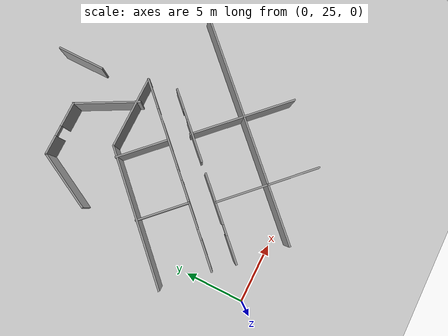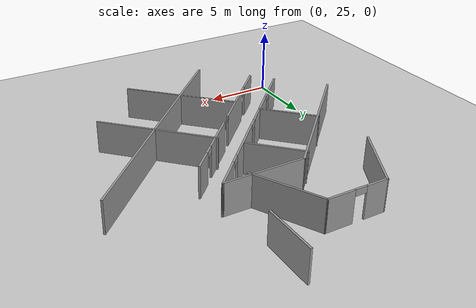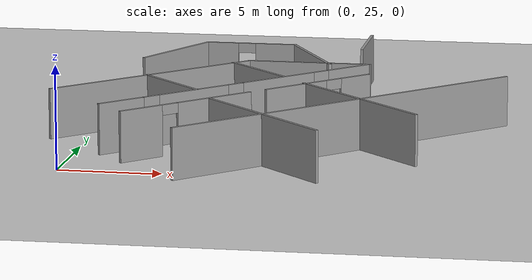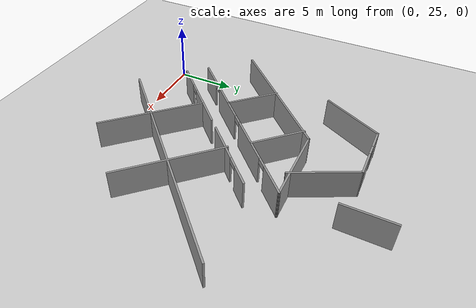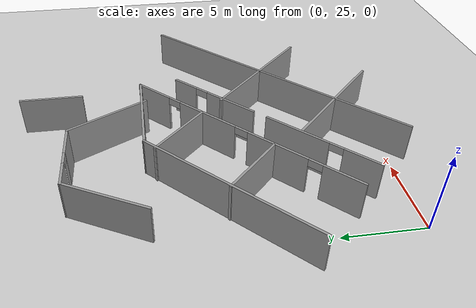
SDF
<sdf version="1.6">
 <world name="default">
  <model name="ground_plane">
   <static>1</static>
   <link name="link">
    <collision name="collision">
     <geometry><plane><normal>0 0 1</normal><size>100 100</size></plane></geometry>
     <surface>
      <contact><collide_bitmask>65535</collide_bitmask></contact>
      <friction><ode><mu>100</mu><mu2>50</mu2></ode></friction>
     </surface>
    </collision>
    <visual name="visual">
     <cast_shadows>0</cast_shadows>
     <geometry><plane><normal>0 0 1</normal><size>100 100</size></plane></geometry>
     <material>
      <script><uri>file://media/materials/scripts/gazebo.material</uri><name>Gazebo/Grey</name></script>
     </material>
    </visual>
   </link>
  </model>
  <model name="Level_1_with_doors">
   <link name="Wall_13">
    <pose>-2.41325 19.5239 0 0 -0 1.08416</pose>
    <visual name="Wall_13_Visual">
     <pose>0 0 1.25 0 -0 0</pose>
     <geometry><box><size>5.33905 0.15 2.5</size></box></geometry>
     <material>
      <script><uri>file://media/materials/scripts/gazebo.material</uri><name>Gazebo/Grey</name></script>
      <ambient>1 1 1 1</ambient>
      <shader type="pixel"/>
     </material>
     <meta><layer>0</layer></meta>
    </visual>
    <collision name="Wall_13_Collision">
     <pose>0 0 1.25 0 -0 0</pose>
     <geometry><box><size>5.33905 0.15 2.5</size></box></geometry>
     <surface>
      <friction>
       <ode><mu>1</mu><mu2>1</mu2><fdir1>0 0 0</fdir1><slip1>0</slip1><slip2>0</slip2></ode>
       <torsional>
        <coefficient>1</coefficient>
        <patch_radius>0</patch_radius>
        <surface_radius>0</surface_radius>
        <use_patch_radius>1</use_patch_radius>
        <ode><slip>0</slip></ode>
       </torsional>
      </friction>
      <bounce><restitution_coefficient>0</restitution_coefficient><threshold>1e+06</threshold></bounce>
      <contact>
       <collide_without_contact>0</collide_without_contact>
       <collide_without_contact_bitmask>1</collide_without_contact_bitmask>
       <collide_bitmask>1</collide_bitmask>
       <ode>
        <soft_cfm>0</soft_cfm>
        <soft_erp>0.2</soft_erp>
        <kp>1e+13</kp>
        <kd>1</kd>
        <max_vel>0.01</max_vel>
        <min_depth>0</min_depth>
       </ode>
       <bullet>
        <split_impulse>1</split_impulse>
        <split_impulse_penetration_threshold>-0.01</split_impulse_penetration_threshold>
        <soft_cfm>0</soft_cfm>
        <soft_erp>0.2</soft_erp>
        <kp>1e+13</kp>
        <kd>1</kd>
       </bullet>
      </contact>
     </surface>
    </collision>
   </link>
   <link name="Wall_14">
    <pose>1.10008 21.8173 0 0 -0 0</pose>
    <visual name="Wall_14_Visual_1">
     <pose>1.3025 0 1.25 0 -0 0</pose>
     <geometry><box><size>2.145 0.15 2.5</size></box></geometry>
     <material>
      <script><uri>file://media/materials/scripts/gazebo.material</uri><name>Gazebo/Grey</name></script>
      <ambient>1 1 1 1</ambient>
      <shader type="pixel"/>
     </material>
     <meta><layer>0</layer></meta>
    </visual>
    <visual name="Wall_14_Visual_2">
     <pose>-0.22 0 2.25 0 -0 0</pose>
     <geometry><box><size>0.9 0.15 0.5</size></box></geometry>
     <material>
      <script><uri>file://media/materials/scripts/gazebo.material</uri><name>Gazebo/Grey</name></script>
      <ambient>1 1 1 1</ambient>
      <shader type="pixel"/>
     </material>
     <meta><layer>0</layer></meta>
    </visual>
    <visual name="Wall_14_Visual_0">
     <pose>-1.5225 0 1.25 0 -0 0</pose>
     <geometry><box><size>1.705 0.15 2.5</size></box></geometry>
     <material>
      <script><uri>file://media/materials/scripts/gazebo.material</uri><name>Gazebo/Grey</name></script>
      <ambient>1 1 1 1</ambient>
      <shader type="pixel"/>
     </material>
     <meta><layer>0</layer></meta>
    </visual>
    <collision name="Wall_14_Collision_0">
     <pose>-1.5225 0 1.25 0 -0 0</pose>
     <geometry><box><size>1.705 0.15 2.5</size></box></geometry>
     <surface>
      <friction>
       <ode><mu>1</mu><mu2>1</mu2><fdir1>0 0 0</fdir1><slip1>0</slip1><slip2>0</slip2></ode>
       <torsional>
        <coefficient>1</coefficient>
        <patch_radius>0</patch_radius>
        <surface_radius>0</surface_radius>
        <use_patch_radius>1</use_patch_radius>
        <ode><slip>0</slip></ode>
       </torsional>
      </friction>
      <bounce><restitution_coefficient>0</restitution_coefficient><threshold>1e+06</threshold></bounce>
      <contact>
       <collide_without_contact>0</collide_without_contact>
       <collide_without_contact_bitmask>1</collide_without_contact_bitmask>
       <collide_bitmask>1</collide_bitmask>
       <ode>
        <soft_cfm>0</soft_cfm>
        <soft_erp>0.2</soft_erp>
        <kp>1e+13</kp>
        <kd>1</kd>
        <max_vel>0.01</max_vel>
        <min_depth>0</min_depth>
       </ode>
       <bullet>
        <split_impulse>1</split_impulse>
        <split_impulse_penetration_threshold>-0.01</split_impulse_penetration_threshold>
        <soft_cfm>0</soft_cfm>
        <soft_erp>0.2</soft_erp>
        <kp>1e+13</kp>
        <kd>1</kd>
       </bullet>
      </contact>
     </surface>
    </collision>
    <collision name="Wall_14_Collision_1">
     <pose>1.3025 0 1.25 0 -0 0</pose>
     <geometry><box><size>2.145 0.15 2.5</size></box></geometry>
     <surface>
      <friction>
       <ode><mu>1</mu><mu2>1</mu2><fdir1>0 0 0</fdir1><slip1>0</slip1><slip2>0</slip2></ode>
       <torsional>
        <coefficient>1</coefficient>
        <patch_radius>0</patch_radius>
        <surface_radius>0</surface_radius>
        <use_patch_radius>1</use_patch_radius>
        <ode><slip>0</slip></ode>
       </torsional>
      </friction>
      <bounce><restitution_coefficient>0</restitution_coefficient><threshold>1e+06</threshold></bounce>
      <contact>
       <collide_without_contact>0</collide_without_contact>
       <collide_without_contact_bitmask>1</collide_without_contact_bitmask>
       <collide_bitmask>1</collide_bitmask>
       <ode>
        <soft_cfm>0</soft_cfm>
        <soft_erp>0.2</soft_erp>
        <kp>1e+13</kp>
        <kd>1</kd>
        <max_vel>0.01</max_vel>
        <min_depth>0</min_depth>
       </ode>
       <bullet>
        <split_impulse>1</split_impulse>
        <split_impulse_penetration_threshold>-0.01</split_impulse_penetration_threshold>
        <soft_cfm>0</soft_cfm>
        <soft_erp>0.2</soft_erp>
        <kp>1e+13</kp>
        <kd>1</kd>
       </bullet>
      </contact>
     </surface>
    </collision>
    <collision name="Wall_14_Collision_2">
     <pose>-0.22 0 2.25 0 -0 0</pose>
     <geometry><box><size>0.9 0.15 0.5</size></box></geometry>
     <surface>
      <friction>
       <ode><mu>1</mu><mu2>1</mu2><fdir1>0 0 0</fdir1><slip1>0</slip1><slip2>0</slip2></ode>
       <torsional>
        <coefficient>1</coefficient>
        <patch_radius>0</patch_radius>
        <surface_radius>0</surface_radius>
        <use_patch_radius>1</use_patch_radius>
        <ode><slip>0</slip></ode>
       </torsional>
      </friction>
      <bounce><restitution_coefficient>0</restitution_coefficient><threshold>1e+06</threshold></bounce>
      <contact>
       <collide_without_contact>0</collide_without_contact>
       <collide_without_contact_bitmask>1</collide_without_contact_bitmask>
       <collide_bitmask>1</collide_bitmask>
       <ode>
        <soft_cfm>0</soft_cfm>
        <soft_erp>0.2</soft_erp>
        <kp>1e+13</kp>
        <kd>1</kd>
        <max_vel>0.01</max_vel>
        <min_depth>0</min_depth>
       </ode>
       <bullet>
        <split_impulse>1</split_impulse>
        <split_impulse_penetration_threshold>-0.01</split_impulse_penetration_threshold>
        <soft_cfm>0</soft_cfm>
        <soft_erp>0.2</soft_erp>
        <kp>1e+13</kp>
        <kd>1</kd>
       </bullet>
      </contact>
     </surface>
    </collision>
   </link>
   <link name="Wall_15">
    <pose>4.66008 19.4439 0 0 0 -1.08274</pose>
    <visual name="Wall_15_Visual">
     <pose>0 0 1.25 0 -0 0</pose>
     <geometry><box><size>5.52413 0.15 2.5</size></box></geometry>
     <material>
      <script><uri>file://media/materials/scripts/gazebo.material</uri><name>Gazebo/Grey</name></script>
      <ambient>1 1 1 1</ambient>
      <shader type="pixel"/>
     </material>
     <meta><layer>0</layer></meta>
    </visual>
    <collision name="Wall_15_Collision">
     <pose>0 0 1.25 0 -0 0</pose>
     <geometry><box><size>5.52413 0.15 2.5</size></box></geometry>
     <surface>
      <friction>
       <ode><mu>1</mu><mu2>1</mu2><fdir1>0 0 0</fdir1><slip1>0</slip1><slip2>0</slip2></ode>
       <torsional>
        <coefficient>1</coefficient>
        <patch_radius>0</patch_radius>
        <surface_radius>0</surface_radius>
        <use_patch_radius>1</use_patch_radius>
        <ode><slip>0</slip></ode>
       </torsional>
      </friction>
      <bounce><restitution_coefficient>0</restitution_coefficient><threshold>1e+06</threshold></bounce>
      <contact>
       <collide_without_contact>0</collide_without_contact>
       <collide_without_contact_bitmask>1</collide_without_contact_bitmask>
       <collide_bitmask>1</collide_bitmask>
       <ode>
        <soft_cfm>0</soft_cfm>
        <soft_erp>0.2</soft_erp>
        <kp>1e+13</kp>
        <kd>1</kd>
        <max_vel>0.01</max_vel>
        <min_depth>0</min_depth>
       </ode>
       <bullet>
        <split_impulse>1</split_impulse>
        <split_impulse_penetration_threshold>-0.01</split_impulse_penetration_threshold>
        <soft_cfm>0</soft_cfm>
        <soft_erp>0.2</soft_erp>
        <kp>1e+13</kp>
        <kd>1</kd>
       </bullet>
      </contact>
     </surface>
    </collision>
   </link>
   <link name="Wall_17">
    <pose>7.00623 23.0867 0 0 0 -1.5708</pose>
    <visual name="Wall_17_Visual">
     <pose>0 0 1.25 0 -0 0</pose>
     <geometry><box><size>4 0.15 2.5</size></box></geometry>
     <material>
      <script><uri>file://media/materials/scripts/gazebo.material</uri><name>Gazebo/Grey</name></script>
      <ambient>1 1 1 1</ambient>
      <shader type="pixel"/>
     </material>
     <meta><layer>0</layer></meta>
    </visual>
    <collision name="Wall_17_Collision">
     <pose>0 0 1.25 0 -0 0</pose>
     <geometry><box><size>4 0.15 2.5</size></box></geometry>
     <surface>
      <friction>
       <ode><mu>1</mu><mu2>1</mu2><fdir1>0 0 0</fdir1><slip1>0</slip1><slip2>0</slip2></ode>
       <torsional>
        <coefficient>1</coefficient>
        <patch_radius>0</patch_radius>
        <surface_radius>0</surface_radius>
        <use_patch_radius>1</use_patch_radius>
        <ode><slip>0</slip></ode>
       </torsional>
      </friction>
      <bounce><restitution_coefficient>0</restitution_coefficient><threshold>1e+06</threshold></bounce>
      <contact>
       <collide_without_contact>0</collide_without_contact>
       <collide_without_contact_bitmask>1</collide_without_contact_bitmask>
       <collide_bitmask>1</collide_bitmask>
       <ode>
        <soft_cfm>0</soft_cfm>
        <soft_erp>0.2</soft_erp>
        <kp>1e+13</kp>
        <kd>1</kd>
        <max_vel>0.01</max_vel>
        <min_depth>0</min_depth>
       </ode>
       <bullet>
        <split_impulse>1</split_impulse>
        <split_impulse_penetration_threshold>-0.01</split_impulse_penetration_threshold>
        <soft_cfm>0</soft_cfm>
        <soft_erp>0.2</soft_erp>
        <kp>1e+13</kp>
        <kd>1</kd>
       </bullet>
      </contact>
     </surface>
    </collision>
   </link>
   <link name="Wall_27">
    <pose>3.01857 9.64481 0 0 -0 0.788384</pose>
    <visual name="Wall_27_Visual_5">
     <pose>0.162009 0 2.25 0 -0 0</pose>
     <geometry><box><size>0 0.15 0.5</size></box></geometry>
     <material>
      <script><uri>file://media/materials/scripts/gazebo.material</uri><name>Gazebo/Grey</name></script>
      <ambient>1 1 1 1</ambient>
      <shader type="pixel"/>
     </material>
     <meta><layer>0</layer></meta>
    </visual>
    <visual name="Wall_27_Visual_4">
     <pose>-4.57133 0 2.25 0 -0 0</pose>
     <geometry><box><size>0.9 0.15 0.5</size></box></geometry>
     <material>
      <script><uri>file://media/materials/scripts/gazebo.material</uri><name>Gazebo/Grey</name></script>
      <ambient>1 1 1 1</ambient>
      <shader type="pixel"/>
     </material>
     <meta><layer>0</layer></meta>
    </visual>
    <visual name="Wall_27_Visual_2">
     <pose>2.88774 0 1.25 0 -0 0</pose>
     <geometry><box><size>3.65146 0.15 2.5</size></box></geometry>
     <material>
      <script><uri>file://media/materials/scripts/gazebo.material</uri><name>Gazebo/Grey</name></script>
      <ambient>1 1 1 1</ambient>
      <shader type="pixel"/>
     </material>
     <meta><layer>0</layer></meta>
    </visual>
    <visual name="Wall_27_Visual_6">
     <pose>5.16347 0 2.25 0 -0 0</pose>
     <geometry><box><size>0.9 0.15 0.5</size></box></geometry>
     <material>
      <script><uri>file://media/materials/scripts/gazebo.material</uri><name>Gazebo/Grey</name></script>
      <ambient>1 1 1 1</ambient>
      <shader type="pixel"/>
     </material>
     <meta><layer>0</layer></meta>
    </visual>
    <visual name="Wall_27_Visual_1">
     <pose>-1.97966 0 1.25 0 -0 0</pose>
     <geometry><box><size>4.28334 0.15 2.5</size></box></geometry>
     <material>
      <script><uri>file://media/materials/scripts/gazebo.material</uri><name>Gazebo/Grey</name></script>
      <ambient>1 1 1 1</ambient>
      <shader type="pixel"/>
     </material>
     <meta><layer>0</layer></meta>
    </visual>
    <visual name="Wall_27_Visual_0">
     <pose>-6.20911 0 1.25 0 -0 0</pose>
     <geometry><box><size>2.37556 0.15 2.5</size></box></geometry>
     <material>
      <script><uri>file://media/materials/scripts/gazebo.material</uri><name>Gazebo/Grey</name></script>
      <ambient>1 1 1 1</ambient>
      <shader type="pixel"/>
     </material>
     <meta><layer>0</layer></meta>
    </visual>
    <visual name="Wall_27_Visual_3">
     <pose>6.50518 0 1.25 0 -0 0</pose>
     <geometry><box><size>1.78342 0.15 2.5</size></box></geometry>
     <material>
      <script><uri>file://media/materials/scripts/gazebo.material</uri><name>Gazebo/Grey</name></script>
      <ambient>1 1 1 1</ambient>
      <shader type="pixel"/>
     </material>
     <meta><layer>0</layer></meta>
    </visual>
    <collision name="Wall_27_Collision_5">
     <pose>0.162009 0 2.25 0 -0 0</pose>
     <geometry><box><size>0 0.15 0.5</size></box></geometry>
     <surface>
      <friction>
       <ode><mu>1</mu><mu2>1</mu2><fdir1>0 0 0</fdir1><slip1>0</slip1><slip2>0</slip2></ode>
       <torsional>
        <coefficient>1</coefficient>
        <patch_radius>0</patch_radius>
        <surface_radius>0</surface_radius>
        <use_patch_radius>1</use_patch_radius>
        <ode><slip>0</slip></ode>
       </torsional>
      </friction>
      <bounce><restitution_coefficient>0</restitution_coefficient><threshold>1e+06</threshold></bounce>
      <contact>
       <collide_without_contact>0</collide_without_contact>
       <collide_without_contact_bitmask>1</collide_without_contact_bitmask>
       <collide_bitmask>1</collide_bitmask>
       <ode>
        <soft_cfm>0</soft_cfm>
        <soft_erp>0.2</soft_erp>
        <kp>1e+13</kp>
        <kd>1</kd>
        <max_vel>0.01</max_vel>
        <min_depth>0</min_depth>
       </ode>
       <bullet>
        <split_impulse>1</split_impulse>
        <split_impulse_penetration_threshold>-0.01</split_impulse_penetration_threshold>
        <soft_cfm>0</soft_cfm>
        <soft_erp>0.2</soft_erp>
        <kp>1e+13</kp>
        <kd>1</kd>
       </bullet>
      </contact>
     </surface>
    </collision>
    <collision name="Wall_27_Collision_4">
     <pose>-4.57133 0 2.25 0 -0 0</pose>
     <geometry><box><size>0.9 0.15 0.5</size></box></geometry>
     <surface>
      <friction>
       <ode><mu>1</mu><mu2>1</mu2><fdir1>0 0 0</fdir1><slip1>0</slip1><slip2>0</slip2></ode>
       <torsional>
        <coefficient>1</coefficient>
        <patch_radius>0</patch_radius>
        <surface_radius>0</surface_radius>
        <use_patch_radius>1</use_patch_radius>
        <ode><slip>0</slip></ode>
       </torsional>
      </friction>
      <bounce><restitution_coefficient>0</restitution_coefficient><threshold>1e+06</threshold></bounce>
      <contact>
       <collide_without_contact>0</collide_without_contact>
       <collide_without_contact_bitmask>1</collide_without_contact_bitmask>
       <collide_bitmask>1</collide_bitmask>
       <ode>
        <soft_cfm>0</soft_cfm>
        <soft_erp>0.2</soft_erp>
        <kp>1e+13</kp>
        <kd>1</kd>
        <max_vel>0.01</max_vel>
        <min_depth>0</min_depth>
       </ode>
       <bullet>
        <split_impulse>1</split_impulse>
        <split_impulse_penetration_threshold>-0.01</split_impulse_penetration_threshold>
        <soft_cfm>0</soft_cfm>
        <soft_erp>0.2</soft_erp>
        <kp>1e+13</kp>
        <kd>1</kd>
       </bullet>
      </contact>
     </surface>
    </collision>
    <collision name="Wall_27_Collision_0">
     <pose>-6.20911 0 1.25 0 -0 0</pose>
     <geometry><box><size>2.37556 0.15 2.5</size></box></geometry>
     <surface>
      <friction>
       <ode><mu>1</mu><mu2>1</mu2><fdir1>0 0 0</fdir1><slip1>0</slip1><slip2>0</slip2></ode>
       <torsional>
        <coefficient>1</coefficient>
        <patch_radius>0</patch_radius>
        <surface_radius>0</surface_radius>
        <use_patch_radius>1</use_patch_radius>
        <ode><slip>0</slip></ode>
       </torsional>
      </friction>
      <bounce><restitution_coefficient>0</restitution_coefficient><threshold>1e+06</threshold></bounce>
      <contact>
       <collide_without_contact>0</collide_without_contact>
       <collide_without_contact_bitmask>1</collide_without_contact_bitmask>
       <collide_bitmask>1</collide_bitmask>
       <ode>
        <soft_cfm>0</soft_cfm>
        <soft_erp>0.2</soft_erp>
        <kp>1e+13</kp>
        <kd>1</kd>
        <max_vel>0.01</max_vel>
        <min_depth>0</min_depth>
       </ode>
       <bullet>
        <split_impulse>1</split_impulse>
        <split_impulse_penetration_threshold>-0.01</split_impulse_penetration_threshold>
        <soft_cfm>0</soft_cfm>
        <soft_erp>0.2</soft_erp>
        <kp>1e+13</kp>
        <kd>1</kd>
       </bullet>
      </contact>
     </surface>
    </collision>
    <collision name="Wall_27_Collision_1">
     <pose>-1.97966 0 1.25 0 -0 0</pose>
     <geometry><box><size>4.28334 0.15 2.5</size></box></geometry>
     <surface>
      <friction>
       <ode><mu>1</mu><mu2>1</mu2><fdir1>0 0 0</fdir1><slip1>0</slip1><slip2>0</slip2></ode>
       <torsional>
        <coefficient>1</coefficient>
        <patch_radius>0</patch_radius>
        <surface_radius>0</surface_radius>
        <use_patch_radius>1</use_patch_radius>
        <ode><slip>0</slip></ode>
       </torsional>
      </friction>
      <bounce><restitution_coefficient>0</restitution_coefficient><threshold>1e+06</threshold></bounce>
      <contact>
       <collide_without_contact>0</collide_without_contact>
       <collide_without_contact_bitmask>1</collide_without_contact_bitmask>
       <collide_bitmask>1</collide_bitmask>
       <ode>
        <soft_cfm>0</soft_cfm>
        <soft_erp>0.2</soft_erp>
        <kp>1e+13</kp>
        <kd>1</kd>
        <max_vel>0.01</max_vel>
        <min_depth>0</min_depth>
       </ode>
       <bullet>
        <split_impulse>1</split_impulse>
        <split_impulse_penetration_threshold>-0.01</split_impulse_penetration_threshold>
        <soft_cfm>0</soft_cfm>
        <soft_erp>0.2</soft_erp>
        <kp>1e+13</kp>
        <kd>1</kd>
       </bullet>
      </contact>
     </surface>
    </collision>
    <collision name="Wall_27_Collision_3">
     <pose>6.50518 0 1.25 0 -0 0</pose>
     <geometry><box><size>1.78342 0.15 2.5</size></box></geometry>
     <surface>
      <friction>
       <ode><mu>1</mu><mu2>1</mu2><fdir1>0 0 0</fdir1><slip1>0</slip1><slip2>0</slip2></ode>
       <torsional>
        <coefficient>1</coefficient>
        <patch_radius>0</patch_radius>
        <surface_radius>0</surface_radius>
        <use_patch_radius>1</use_patch_radius>
        <ode><slip>0</slip></ode>
       </torsional>
      </friction>
      <bounce><restitution_coefficient>0</restitution_coefficient><threshold>1e+06</threshold></bounce>
      <contact>
       <collide_without_contact>0</collide_without_contact>
       <collide_without_contact_bitmask>1</collide_without_contact_bitmask>
       <collide_bitmask>1</collide_bitmask>
       <ode>
        <soft_cfm>0</soft_cfm>
        <soft_erp>0.2</soft_erp>
        <kp>1e+13</kp>
        <kd>1</kd>
        <max_vel>0.01</max_vel>
        <min_depth>0</min_depth>
       </ode>
       <bullet>
        <split_impulse>1</split_impulse>
        <split_impulse_penetration_threshold>-0.01</split_impulse_penetration_threshold>
        <soft_cfm>0</soft_cfm>
        <soft_erp>0.2</soft_erp>
        <kp>1e+13</kp>
        <kd>1</kd>
       </bullet>
      </contact>
     </surface>
    </collision>
    <collision name="Wall_27_Collision_6">
     <pose>5.16347 0 2.25 0 -0 0</pose>
     <geometry><box><size>0.9 0.15 0.5</size></box></geometry>
     <surface>
      <friction>
       <ode><mu>1</mu><mu2>1</mu2><fdir1>0 0 0</fdir1><slip1>0</slip1><slip2>0</slip2></ode>
       <torsional>
        <coefficient>1</coefficient>
        <patch_radius>0</patch_radius>
        <surface_radius>0</surface_radius>
        <use_patch_radius>1</use_patch_radius>
        <ode><slip>0</slip></ode>
       </torsional>
      </friction>
      <bounce><restitution_coefficient>0</restitution_coefficient><threshold>1e+06</threshold></bounce>
      <contact>
       <collide_without_contact>0</collide_without_contact>
       <collide_without_contact_bitmask>1</collide_without_contact_bitmask>
       <collide_bitmask>1</collide_bitmask>
       <ode>
        <soft_cfm>0</soft_cfm>
        <soft_erp>0.2</soft_erp>
        <kp>1e+13</kp>
        <kd>1</kd>
        <max_vel>0.01</max_vel>
        <min_depth>0</min_depth>
       </ode>
       <bullet>
        <split_impulse>1</split_impulse>
        <split_impulse_penetration_threshold>-0.01</split_impulse_penetration_threshold>
        <soft_cfm>0</soft_cfm>
        <soft_erp>0.2</soft_erp>
        <kp>1e+13</kp>
        <kd>1</kd>
       </bullet>
      </contact>
     </surface>
    </collision>
    <collision name="Wall_27_Collision_2">
     <pose>2.88774 0 1.25 0 -0 0</pose>
     <geometry><box><size>3.65146 0.15 2.5</size></box></geometry>
     <surface>
      <friction>
       <ode><mu>1</mu><mu2>1</mu2><fdir1>0 0 0</fdir1><slip1>0</slip1><slip2>0</slip2></ode>
       <torsional>
        <coefficient>1</coefficient>
        <patch_radius>0</patch_radius>
        <surface_radius>0</surface_radius>
        <use_patch_radius>1</use_patch_radius>
        <ode><slip>0</slip></ode>
       </torsional>
      </friction>
      <bounce><restitution_coefficient>0</restitution_coefficient><threshold>1e+06</threshold></bounce>
      <contact>
       <collide_without_contact>0</collide_without_contact>
       <collide_without_contact_bitmask>1</collide_without_contact_bitmask>
       <collide_bitmask>1</collide_bitmask>
       <ode>
        <soft_cfm>0</soft_cfm>
        <soft_erp>0.2</soft_erp>
        <kp>1e+13</kp>
        <kd>1</kd>
        <max_vel>0.01</max_vel>
        <min_depth>0</min_depth>
       </ode>
       <bullet>
        <split_impulse>1</split_impulse>
        <split_impulse_penetration_threshold>-0.01</split_impulse_penetration_threshold>
        <soft_cfm>0</soft_cfm>
        <soft_erp>0.2</soft_erp>
        <kp>1e+13</kp>
        <kd>1</kd>
       </bullet>
      </contact>
     </surface>
    </collision>
   </link>
   <link name="Wall_38">
    <pose>7.96599 8.37358 0 0 -0 0.785398</pose>
    <visual name="Wall_38_Visual">
     <pose>0 0 1.25 0 -0 0</pose>
     <geometry><box><size>20 0.15 2.5</size></box></geometry>
     <material>
      <script><uri>file://media/materials/scripts/gazebo.material</uri><name>Gazebo/Grey</name></script>
      <ambient>1 1 1 1</ambient>
      <shader type="pixel"/>
     </material>
     <meta><layer>0</layer></meta>
    </visual>
    <collision name="Wall_38_Collision">
     <pose>0 0 1.25 0 -0 0</pose>
     <geometry><box><size>20 0.15 2.5</size></box></geometry>
     <surface>
      <friction>
       <ode><mu>1</mu><mu2>1</mu2><fdir1>0 0 0</fdir1><slip1>0</slip1><slip2>0</slip2></ode>
       <torsional>
        <coefficient>1</coefficient>
        <patch_radius>0</patch_radius>
        <surface_radius>0</surface_radius>
        <use_patch_radius>1</use_patch_radius>
        <ode><slip>0</slip></ode>
       </torsional>
      </friction>
      <bounce><restitution_coefficient>0</restitution_coefficient><threshold>1e+06</threshold></bounce>
      <contact>
       <collide_without_contact>0</collide_without_contact>
       <collide_without_contact_bitmask>1</collide_without_contact_bitmask>
       <collide_bitmask>1</collide_bitmask>
       <ode>
        <soft_cfm>0</soft_cfm>
        <soft_erp>0.2</soft_erp>
        <kp>1e+13</kp>
        <kd>1</kd>
        <max_vel>0.01</max_vel>
        <min_depth>0</min_depth>
       </ode>
       <bullet>
        <split_impulse>1</split_impulse>
        <split_impulse_penetration_threshold>-0.01</split_impulse_penetration_threshold>
        <soft_cfm>0</soft_cfm>
        <soft_erp>0.2</soft_erp>
        <kp>1e+13</kp>
        <kd>1</kd>
       </bullet>
      </contact>
     </surface>
    </collision>
   </link>
   <link name="Wall_40">
    <pose>4.50312 4.92361 0 0 0 -0.785398</pose>
    <visual name="Wall_40_Visual">
     <pose>0 0 1.25 0 -0 0</pose>
     <geometry><box><size>8.75 0.15 2.5</size></box></geometry>
     <material>
      <script><uri>file://media/materials/scripts/gazebo.material</uri><name>Gazebo/Grey</name></script>
      <ambient>1 1 1 1</ambient>
      <shader type="pixel"/>
     </material>
     <meta><layer>0</layer></meta>
    </visual>
    <collision name="Wall_40_Collision">
     <pose>0 0 1.25 0 -0 0</pose>
     <geometry><box><size>8.75 0.15 2.5</size></box></geometry>
     <surface>
      <friction>
       <ode><mu>1</mu><mu2>1</mu2><fdir1>0 0 0</fdir1><slip1>0</slip1><slip2>0</slip2></ode>
       <torsional>
        <coefficient>1</coefficient>
        <patch_radius>0</patch_radius>
        <surface_radius>0</surface_radius>
        <use_patch_radius>1</use_patch_radius>
        <ode><slip>0</slip></ode>
       </torsional>
      </friction>
      <bounce><restitution_coefficient>0</restitution_coefficient><threshold>1e+06</threshold></bounce>
      <contact>
       <collide_without_contact>0</collide_without_contact>
       <collide_without_contact_bitmask>1</collide_without_contact_bitmask>
       <collide_bitmask>1</collide_bitmask>
       <ode>
        <soft_cfm>0</soft_cfm>
        <soft_erp>0.2</soft_erp>
        <kp>1e+13</kp>
        <kd>1</kd>
        <max_vel>0.01</max_vel>
        <min_depth>0</min_depth>
       </ode>
       <bullet>
        <split_impulse>1</split_impulse>
        <split_impulse_penetration_threshold>-0.01</split_impulse_penetration_threshold>
        <soft_cfm>0</soft_cfm>
        <soft_erp>0.2</soft_erp>
        <kp>1e+13</kp>
        <kd>1</kd>
       </bullet>
      </contact>
     </surface>
    </collision>
   </link>
   <link name="Wall_42">
    <pose>8.51311 9.0953 0 0 0 -0.785398</pose>
    <visual name="Wall_42_Visual">
     <pose>0 0 1.25 0 -0 0</pose>
     <geometry><box><size>9 0.15 2.5</size></box></geometry>
     <material>
      <script><uri>file://media/materials/scripts/gazebo.material</uri><name>Gazebo/Grey</name></script>
      <ambient>1 1 1 1</ambient>
      <shader type="pixel"/>
     </material>
     <meta><layer>0</layer></meta>
    </visual>
    <collision name="Wall_42_Collision">
     <pose>0 0 1.25 0 -0 0</pose>
     <geometry><box><size>9 0.15 2.5</size></box></geometry>
     <surface>
      <friction>
       <ode><mu>1</mu><mu2>1</mu2><fdir1>0 0 0</fdir1><slip1>0</slip1><slip2>0</slip2></ode>
       <torsional>
        <coefficient>1</coefficient>
        <patch_radius>0</patch_radius>
        <surface_radius>0</surface_radius>
        <use_patch_radius>1</use_patch_radius>
        <ode><slip>0</slip></ode>
       </torsional>
      </friction>
      <bounce><restitution_coefficient>0</restitution_coefficient><threshold>1e+06</threshold></bounce>
      <contact>
       <collide_without_contact>0</collide_without_contact>
       <collide_without_contact_bitmask>1</collide_without_contact_bitmask>
       <collide_bitmask>1</collide_bitmask>
       <ode>
        <soft_cfm>0</soft_cfm>
        <soft_erp>0.2</soft_erp>
        <kp>1e+13</kp>
        <kd>1</kd>
        <max_vel>0.01</max_vel>
        <min_depth>0</min_depth>
       </ode>
       <bullet>
        <split_impulse>1</split_impulse>
        <split_impulse_penetration_threshold>-0.01</split_impulse_penetration_threshold>
        <soft_cfm>0</soft_cfm>
        <soft_erp>0.2</soft_erp>
        <kp>1e+13</kp>
        <kd>1</kd>
       </bullet>
      </contact>
     </surface>
    </collision>
   </link>
   <link name="Wall_49">
    <pose>-2.39972 13.1229 0 0 -0 0.785398</pose>
    <visual name="Wall_49_Visual">
     <pose>0 0 1.25 0 -0 0</pose>
     <geometry><box><size>12 0.15 2.5</size></box></geometry>
     <material>
      <script><uri>file://media/materials/scripts/gazebo.material</uri><name>Gazebo/Grey</name></script>
      <ambient>1 1 1 1</ambient>
      <shader type="pixel"/>
     </material>
     <meta><layer>0</layer></meta>
    </visual>
    <collision name="Wall_49_Collision">
     <pose>0 0 1.25 0 -0 0</pose>
     <geometry><box><size>12 0.15 2.5</size></box></geometry>
     <surface>
      <friction>
       <ode><mu>1</mu><mu2>1</mu2><fdir1>0 0 0</fdir1><slip1>0</slip1><slip2>0</slip2></ode>
       <torsional>
        <coefficient>1</coefficient>
        <patch_radius>0</patch_radius>
        <surface_radius>0</surface_radius>
        <use_patch_radius>1</use_patch_radius>
        <ode><slip>0</slip></ode>
       </torsional>
      </friction>
      <bounce><restitution_coefficient>0</restitution_coefficient><threshold>1e+06</threshold></bounce>
      <contact>
       <collide_without_contact>0</collide_without_contact>
       <collide_without_contact_bitmask>1</collide_without_contact_bitmask>
       <collide_bitmask>1</collide_bitmask>
       <ode>
        <soft_cfm>0</soft_cfm>
        <soft_erp>0.2</soft_erp>
        <kp>1e+13</kp>
        <kd>1</kd>
        <max_vel>0.01</max_vel>
        <min_depth>0</min_depth>
       </ode>
       <bullet>
        <split_impulse>1</split_impulse>
        <split_impulse_penetration_threshold>-0.01</split_impulse_penetration_threshold>
        <soft_cfm>0</soft_cfm>
        <soft_erp>0.2</soft_erp>
        <kp>1e+13</kp>
        <kd>1</kd>
       </bullet>
      </contact>
     </surface>
    </collision>
   </link>
   <link name="Wall_50">
    <pose>4.83989 17.3125 0 0 -0 0</pose>
    <visual name="Wall_50_Visual">
     <pose>0 0 1.25 0 -0 0</pose>
     <geometry><box><size>6.25 0.15 2.5</size></box></geometry>
     <material>
      <script><uri>file://media/materials/scripts/gazebo.material</uri><name>Gazebo/Grey</name></script>
      <ambient>1 1 1 1</ambient>
      <shader type="pixel"/>
     </material>
     <meta><layer>0</layer></meta>
    </visual>
    <collision name="Wall_50_Collision">
     <pose>0 0 1.25 0 -0 0</pose>
     <geometry><box><size>6.25 0.15 2.5</size></box></geometry>
     <surface>
      <friction>
       <ode><mu>1</mu><mu2>1</mu2><fdir1>0 0 0</fdir1><slip1>0</slip1><slip2>0</slip2></ode>
       <torsional>
        <coefficient>1</coefficient>
        <patch_radius>0</patch_radius>
        <surface_radius>0</surface_radius>
        <use_patch_radius>1</use_patch_radius>
        <ode><slip>0</slip></ode>
       </torsional>
      </friction>
      <bounce><restitution_coefficient>0</restitution_coefficient><threshold>1e+06</threshold></bounce>
      <contact>
       <collide_without_contact>0</collide_without_contact>
       <collide_without_contact_bitmask>1</collide_without_contact_bitmask>
       <collide_bitmask>1</collide_bitmask>
       <ode>
        <soft_cfm>0</soft_cfm>
        <soft_erp>0.2</soft_erp>
        <kp>1e+13</kp>
        <kd>1</kd>
        <max_vel>0.01</max_vel>
        <min_depth>0</min_depth>
       </ode>
       <bullet>
        <split_impulse>1</split_impulse>
        <split_impulse_penetration_threshold>-0.01</split_impulse_penetration_threshold>
        <soft_cfm>0</soft_cfm>
        <soft_erp>0.2</soft_erp>
        <kp>1e+13</kp>
        <kd>1</kd>
       </bullet>
      </contact>
     </surface>
    </collision>
   </link>
   <link name="Wall_51">
    <pose>2.19768 11.6203 0 0 0 -2.35619</pose>
    <visual name="Wall_51_Visual_1">
     <pose>-2.42322 0 1.25 0 -0 0</pose>
     <geometry><box><size>4.28545 0.15 2.5</size></box></geometry>
     <material>
      <script><uri>file://media/materials/scripts/gazebo.material</uri><name>Gazebo/Grey</name></script>
      <ambient>1 1 1 1</ambient>
      <shader type="pixel"/>
     </material>
     <meta><layer>0</layer></meta>
    </visual>
    <visual name="Wall_51_Visual_2">
     <pose>2.63926 0 1.25 0 -0 0</pose>
     <geometry><box><size>4.0395 0.15 2.5</size></box></geometry>
     <material>
      <script><uri>file://media/materials/scripts/gazebo.material</uri><name>Gazebo/Grey</name></script>
      <ambient>1 1 1 1</ambient>
      <shader type="pixel"/>
     </material>
     <meta><layer>0</layer></meta>
    </visual>
    <visual name="Wall_51_Visual_6">
     <pose>5.10901 0 2.25 0 -0 0</pose>
     <geometry><box><size>0.9 0.15 0.5</size></box></geometry>
     <material>
      <script><uri>file://media/materials/scripts/gazebo.material</uri><name>Gazebo/Grey</name></script>
      <ambient>1 1 1 1</ambient>
      <shader type="pixel"/>
     </material>
     <meta><layer>0</layer></meta>
    </visual>
    <visual name="Wall_51_Visual_0">
     <pose>-6.79547 0 1.25 0 -0 0</pose>
     <geometry><box><size>2.65906 0.15 2.5</size></box></geometry>
     <material>
      <script><uri>file://media/materials/scripts/gazebo.material</uri><name>Gazebo/Grey</name></script>
      <ambient>1 1 1 1</ambient>
      <shader type="pixel"/>
     </material>
     <meta><layer>0</layer></meta>
    </visual>
    <visual name="Wall_51_Visual_4">
     <pose>-5.01594 0 2.25 0 -0 0</pose>
     <geometry><box><size>0.9 0.15 0.5</size></box></geometry>
     <material>
      <script><uri>file://media/materials/scripts/gazebo.material</uri><name>Gazebo/Grey</name></script>
      <ambient>1 1 1 1</ambient>
      <shader type="pixel"/>
     </material>
     <meta><layer>0</layer></meta>
    </visual>
    <visual name="Wall_51_Visual_3">
     <pose>6.842 0 1.25 0 -0 0</pose>
     <geometry><box><size>2.56599 0.15 2.5</size></box></geometry>
     <material>
      <script><uri>file://media/materials/scripts/gazebo.material</uri><name>Gazebo/Grey</name></script>
      <ambient>1 1 1 1</ambient>
      <shader type="pixel"/>
     </material>
     <meta><layer>0</layer></meta>
    </visual>
    <visual name="Wall_51_Visual_5">
     <pose>0.169508 0 2.25 0 -0 0</pose>
     <geometry><box><size>0.9 0.15 0.5</size></box></geometry>
     <material>
      <script><uri>file://media/materials/scripts/gazebo.material</uri><name>Gazebo/Grey</name></script>
      <ambient>1 1 1 1</ambient>
      <shader type="pixel"/>
     </material>
     <meta><layer>0</layer></meta>
    </visual>
    <collision name="Wall_51_Collision_5">
     <pose>0.169508 0 2.25 0 -0 0</pose>
     <geometry><box><size>0.9 0.15 0.5</size></box></geometry>
     <surface>
      <friction>
       <ode><mu>1</mu><mu2>1</mu2><fdir1>0 0 0</fdir1><slip1>0</slip1><slip2>0</slip2></ode>
       <torsional>
        <coefficient>1</coefficient>
        <patch_radius>0</patch_radius>
        <surface_radius>0</surface_radius>
        <use_patch_radius>1</use_patch_radius>
        <ode><slip>0</slip></ode>
       </torsional>
      </friction>
      <bounce><restitution_coefficient>0</restitution_coefficient><threshold>1e+06</threshold></bounce>
      <contact>
       <collide_without_contact>0</collide_without_contact>
       <collide_without_contact_bitmask>1</collide_without_contact_bitmask>
       <collide_bitmask>1</collide_bitmask>
       <ode>
        <soft_cfm>0</soft_cfm>
        <soft_erp>0.2</soft_erp>
        <kp>1e+13</kp>
        <kd>1</kd>
        <max_vel>0.01</max_vel>
        <min_depth>0</min_depth>
       </ode>
       <bullet>
        <split_impulse>1</split_impulse>
        <split_impulse_penetration_threshold>-0.01</split_impulse_penetration_threshold>
        <soft_cfm>0</soft_cfm>
        <soft_erp>0.2</soft_erp>
        <kp>1e+13</kp>
        <kd>1</kd>
       </bullet>
      </contact>
     </surface>
    </collision>
    <collision name="Wall_51_Collision_4">
     <pose>-5.01594 0 2.25 0 -0 0</pose>
     <geometry><box><size>0.9 0.15 0.5</size></box></geometry>
     <surface>
      <friction>
       <ode><mu>1</mu><mu2>1</mu2><fdir1>0 0 0</fdir1><slip1>0</slip1><slip2>0</slip2></ode>
       <torsional>
        <coefficient>1</coefficient>
        <patch_radius>0</patch_radius>
        <surface_radius>0</surface_radius>
        <use_patch_radius>1</use_patch_radius>
        <ode><slip>0</slip></ode>
       </torsional>
      </friction>
      <bounce><restitution_coefficient>0</restitution_coefficient><threshold>1e+06</threshold></bounce>
      <contact>
       <collide_without_contact>0</collide_without_contact>
       <collide_without_contact_bitmask>1</collide_without_contact_bitmask>
       <collide_bitmask>1</collide_bitmask>
       <ode>
        <soft_cfm>0</soft_cfm>
        <soft_erp>0.2</soft_erp>
        <kp>1e+13</kp>
        <kd>1</kd>
        <max_vel>0.01</max_vel>
        <min_depth>0</min_depth>
       </ode>
       <bullet>
        <split_impulse>1</split_impulse>
        <split_impulse_penetration_threshold>-0.01</split_impulse_penetration_threshold>
        <soft_cfm>0</soft_cfm>
        <soft_erp>0.2</soft_erp>
        <kp>1e+13</kp>
        <kd>1</kd>
       </bullet>
      </contact>
     </surface>
    </collision>
    <collision name="Wall_51_Collision_0">
     <pose>-6.79547 0 1.25 0 -0 0</pose>
     <geometry><box><size>2.65906 0.15 2.5</size></box></geometry>
     <surface>
      <friction>
       <ode><mu>1</mu><mu2>1</mu2><fdir1>0 0 0</fdir1><slip1>0</slip1><slip2>0</slip2></ode>
       <torsional>
        <coefficient>1</coefficient>
        <patch_radius>0</patch_radius>
        <surface_radius>0</surface_radius>
        <use_patch_radius>1</use_patch_radius>
        <ode><slip>0</slip></ode>
       </torsional>
      </friction>
      <bounce><restitution_coefficient>0</restitution_coefficient><threshold>1e+06</threshold></bounce>
      <contact>
       <collide_without_contact>0</collide_without_contact>
       <collide_without_contact_bitmask>1</collide_without_contact_bitmask>
       <collide_bitmask>1</collide_bitmask>
       <ode>
        <soft_cfm>0</soft_cfm>
        <soft_erp>0.2</soft_erp>
        <kp>1e+13</kp>
        <kd>1</kd>
        <max_vel>0.01</max_vel>
        <min_depth>0</min_depth>
       </ode>
       <bullet>
        <split_impulse>1</split_impulse>
        <split_impulse_penetration_threshold>-0.01</split_impulse_penetration_threshold>
        <soft_cfm>0</soft_cfm>
        <soft_erp>0.2</soft_erp>
        <kp>1e+13</kp>
        <kd>1</kd>
       </bullet>
      </contact>
     </surface>
    </collision>
    <collision name="Wall_51_Collision_1">
     <pose>-2.42322 0 1.25 0 -0 0</pose>
     <geometry><box><size>4.28545 0.15 2.5</size></box></geometry>
     <surface>
      <friction>
       <ode><mu>1</mu><mu2>1</mu2><fdir1>0 0 0</fdir1><slip1>0</slip1><slip2>0</slip2></ode>
       <torsional>
        <coefficient>1</coefficient>
        <patch_radius>0</patch_radius>
        <surface_radius>0</surface_radius>
        <use_patch_radius>1</use_patch_radius>
        <ode><slip>0</slip></ode>
       </torsional>
      </friction>
      <bounce><restitution_coefficient>0</restitution_coefficient><threshold>1e+06</threshold></bounce>
      <contact>
       <collide_without_contact>0</collide_without_contact>
       <collide_without_contact_bitmask>1</collide_without_contact_bitmask>
       <collide_bitmask>1</collide_bitmask>
       <ode>
        <soft_cfm>0</soft_cfm>
        <soft_erp>0.2</soft_erp>
        <kp>1e+13</kp>
        <kd>1</kd>
        <max_vel>0.01</max_vel>
        <min_depth>0</min_depth>
       </ode>
       <bullet>
        <split_impulse>1</split_impulse>
        <split_impulse_penetration_threshold>-0.01</split_impulse_penetration_threshold>
        <soft_cfm>0</soft_cfm>
        <soft_erp>0.2</soft_erp>
        <kp>1e+13</kp>
        <kd>1</kd>
       </bullet>
      </contact>
     </surface>
    </collision>
    <collision name="Wall_51_Collision_6">
     <pose>5.10901 0 2.25 0 -0 0</pose>
     <geometry><box><size>0.9 0.15 0.5</size></box></geometry>
     <surface>
      <friction>
       <ode><mu>1</mu><mu2>1</mu2><fdir1>0 0 0</fdir1><slip1>0</slip1><slip2>0</slip2></ode>
       <torsional>
        <coefficient>1</coefficient>
        <patch_radius>0</patch_radius>
        <surface_radius>0</surface_radius>
        <use_patch_radius>1</use_patch_radius>
        <ode><slip>0</slip></ode>
       </torsional>
      </friction>
      <bounce><restitution_coefficient>0</restitution_coefficient><threshold>1e+06</threshold></bounce>
      <contact>
       <collide_without_contact>0</collide_without_contact>
       <collide_without_contact_bitmask>1</collide_without_contact_bitmask>
       <collide_bitmask>1</collide_bitmask>
       <ode>
        <soft_cfm>0</soft_cfm>
        <soft_erp>0.2</soft_erp>
        <kp>1e+13</kp>
        <kd>1</kd>
        <max_vel>0.01</max_vel>
        <min_depth>0</min_depth>
       </ode>
       <bullet>
        <split_impulse>1</split_impulse>
        <split_impulse_penetration_threshold>-0.01</split_impulse_penetration_threshold>
        <soft_cfm>0</soft_cfm>
        <soft_erp>0.2</soft_erp>
        <kp>1e+13</kp>
        <kd>1</kd>
       </bullet>
      </contact>
     </surface>
    </collision>
    <collision name="Wall_51_Collision_2">
     <pose>2.63926 0 1.25 0 -0 0</pose>
     <geometry><box><size>4.0395 0.15 2.5</size></box></geometry>
     <surface>
      <friction>
       <ode><mu>1</mu><mu2>1</mu2><fdir1>0 0 0</fdir1><slip1>0</slip1><slip2>0</slip2></ode>
       <torsional>
        <coefficient>1</coefficient>
        <patch_radius>0</patch_radius>
        <surface_radius>0</surface_radius>
        <use_patch_radius>1</use_patch_radius>
        <ode><slip>0</slip></ode>
       </torsional>
      </friction>
      <bounce><restitution_coefficient>0</restitution_coefficient><threshold>1e+06</threshold></bounce>
      <contact>
       <collide_without_contact>0</collide_without_contact>
       <collide_without_contact_bitmask>1</collide_without_contact_bitmask>
       <collide_bitmask>1</collide_bitmask>
       <ode>
        <soft_cfm>0</soft_cfm>
        <soft_erp>0.2</soft_erp>
        <kp>1e+13</kp>
        <kd>1</kd>
        <max_vel>0.01</max_vel>
        <min_depth>0</min_depth>
       </ode>
       <bullet>
        <split_impulse>1</split_impulse>
        <split_impulse_penetration_threshold>-0.01</split_impulse_penetration_threshold>
        <soft_cfm>0</soft_cfm>
        <soft_erp>0.2</soft_erp>
        <kp>1e+13</kp>
        <kd>1</kd>
       </bullet>
      </contact>
     </surface>
    </collision>
    <collision name="Wall_51_Collision_3">
     <pose>6.842 0 1.25 0 -0 0</pose>
     <geometry><box><size>2.56599 0.15 2.5</size></box></geometry>
     <surface>
      <friction>
       <ode><mu>1</mu><mu2>1</mu2><fdir1>0 0 0</fdir1><slip1>0</slip1><slip2>0</slip2></ode>
       <torsional>
        <coefficient>1</coefficient>
        <patch_radius>0</patch_radius>
        <surface_radius>0</surface_radius>
        <use_patch_radius>1</use_patch_radius>
        <ode><slip>0</slip></ode>
       </torsional>
      </friction>
      <bounce><restitution_coefficient>0</restitution_coefficient><threshold>1e+06</threshold></bounce>
      <contact>
       <collide_without_contact>0</collide_without_contact>
       <collide_without_contact_bitmask>1</collide_without_contact_bitmask>
       <collide_bitmask>1</collide_bitmask>
       <ode>
        <soft_cfm>0</soft_cfm>
        <soft_erp>0.2</soft_erp>
        <kp>1e+13</kp>
        <kd>1</kd>
        <max_vel>0.01</max_vel>
        <min_depth>0</min_depth>
       </ode>
       <bullet>
        <split_impulse>1</split_impulse>
        <split_impulse_penetration_threshold>-0.01</split_impulse_penetration_threshold>
        <soft_cfm>0</soft_cfm>
        <soft_erp>0.2</soft_erp>
        <kp>1e+13</kp>
        <kd>1</kd>
       </bullet>
      </contact>
     </surface>
    </collision>
   </link>
   <link name="Wall_54">
    <pose>-1.1008 11.4327 0 0 0 -0.785398</pose>
    <visual name="Wall_54_Visual">
     <pose>0 0 1.25 0 -0 0</pose>
     <geometry><box><size>4.5 0.15 2.5</size></box></geometry>
     <material>
      <script><uri>file://media/materials/scripts/gazebo.material</uri><name>Gazebo/Grey</name></script>
      <ambient>1 1 1 1</ambient>
      <shader type="pixel"/>
     </material>
     <meta><layer>0</layer></meta>
    </visual>
    <collision name="Wall_54_Collision">
     <pose>0 0 1.25 0 -0 0</pose>
     <geometry><box><size>4.5 0.15 2.5</size></box></geometry>
     <surface>
      <friction>
       <ode><mu>1</mu><mu2>1</mu2><fdir1>0 0 0</fdir1><slip1>0</slip1><slip2>0</slip2></ode>
       <torsional>
        <coefficient>1</coefficient>
        <patch_radius>0</patch_radius>
        <surface_radius>0</surface_radius>
        <use_patch_radius>1</use_patch_radius>
        <ode><slip>0</slip></ode>
       </torsional>
      </friction>
      <bounce><restitution_coefficient>0</restitution_coefficient><threshold>1e+06</threshold></bounce>
      <contact>
       <collide_without_contact>0</collide_without_contact>
       <collide_without_contact_bitmask>1</collide_without_contact_bitmask>
       <collide_bitmask>1</collide_bitmask>
       <ode>
        <soft_cfm>0</soft_cfm>
        <soft_erp>0.2</soft_erp>
        <kp>1e+13</kp>
        <kd>1</kd>
        <max_vel>0.01</max_vel>
        <min_depth>0</min_depth>
       </ode>
       <bullet>
        <split_impulse>1</split_impulse>
        <split_impulse_penetration_threshold>-0.01</split_impulse_penetration_threshold>
        <soft_cfm>0</soft_cfm>
        <soft_erp>0.2</soft_erp>
        <kp>1e+13</kp>
        <kd>1</kd>
       </bullet>
      </contact>
     </surface>
    </collision>
   </link>
   <link name="Wall_56">
    <pose>2.60935 15.1718 0 0 0 -0.785398</pose>
    <visual name="Wall_56_Visual">
     <pose>0 0 1.25 0 -0 0</pose>
     <geometry><box><size>4.5 0.15 2.5</size></box></geometry>
     <material>
      <script><uri>file://media/materials/scripts/gazebo.material</uri><name>Gazebo/Grey</name></script>
      <ambient>1 1 1 1</ambient>
      <shader type="pixel"/>
     </material>
     <meta><layer>0</layer></meta>
    </visual>
    <collision name="Wall_56_Collision">
     <pose>0 0 1.25 0 -0 0</pose>
     <geometry><box><size>4.5 0.15 2.5</size></box></geometry>
     <surface>
      <friction>
       <ode><mu>1</mu><mu2>1</mu2><fdir1>0 0 0</fdir1><slip1>0</slip1><slip2>0</slip2></ode>
       <torsional>
        <coefficient>1</coefficient>
        <patch_radius>0</patch_radius>
        <surface_radius>0</surface_radius>
        <use_patch_radius>1</use_patch_radius>
        <ode><slip>0</slip></ode>
       </torsional>
      </friction>
      <bounce><restitution_coefficient>0</restitution_coefficient><threshold>1e+06</threshold></bounce>
      <contact>
       <collide_without_contact>0</collide_without_contact>
       <collide_without_contact_bitmask>1</collide_without_contact_bitmask>
       <collide_bitmask>1</collide_bitmask>
       <ode>
        <soft_cfm>0</soft_cfm>
        <soft_erp>0.2</soft_erp>
        <kp>1e+13</kp>
        <kd>1</kd>
        <max_vel>0.01</max_vel>
        <min_depth>0</min_depth>
       </ode>
       <bullet>
        <split_impulse>1</split_impulse>
        <split_impulse_penetration_threshold>-0.01</split_impulse_penetration_threshold>
        <soft_cfm>0</soft_cfm>
        <soft_erp>0.2</soft_erp>
        <kp>1e+13</kp>
        <kd>1</kd>
       </bullet>
      </contact>
     </surface>
    </collision>
   </link>
   <static>1</static>
   <pose>4.79959 22.5424 0 0 -0 0</pose>
  </model>
 </world>
</sdf>
